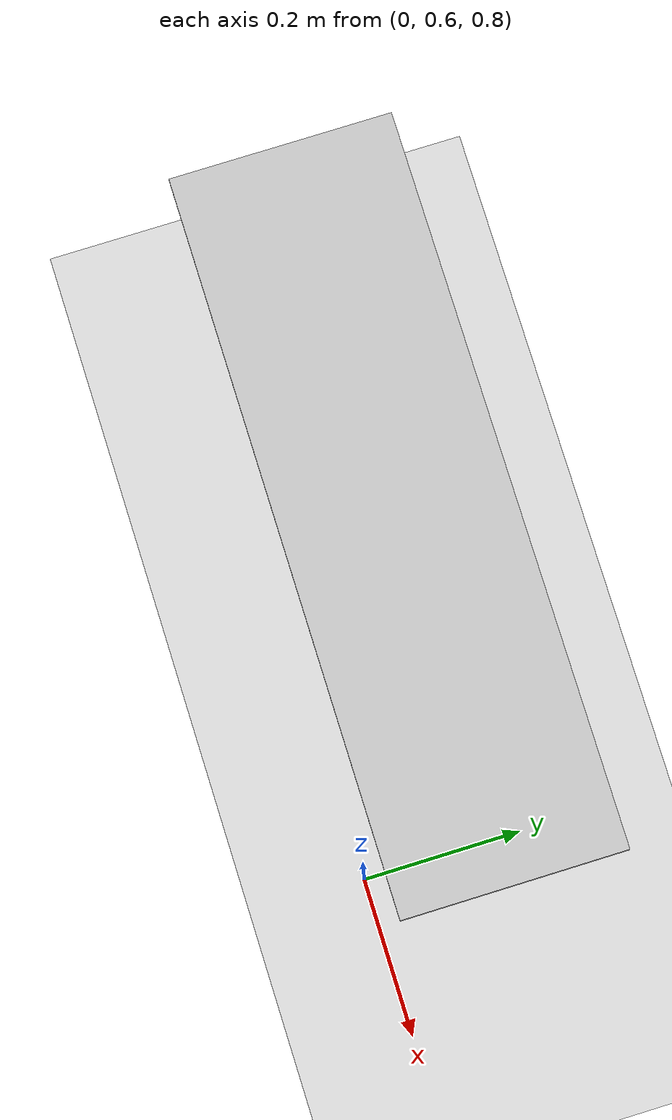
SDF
<?xml version="1.0" ?>

<sdf version="1.5">

  <world name="default">

    <gui>
      <camera name="user_default">
        <pose>-0.1984 2.4436 1.041 0 -0.064 -1.6107</pose>
      </camera>
    </gui>

    <!-- A global light source -->
    <include>
      <uri>model://sun</uri>
    </include>

    <!-- A ground plane -->
    <include>
      <uri>model://ground_plane</uri>
    </include>

    <!-- A rigid body -->
    <model name="box">
      <static>true</static>
      <pose>-0.4455 0.779 0.724389 0 0.0 0</pose>
      <link name="link">
        <collision name="collision">
          <geometry>
            <box>
              <size>1.0 0.3 0.01</size>
            </box>
          </geometry>
        </collision>
        <visual name="visual">
          <geometry>
            <box>
              <size>1.0 0.3 0.01</size>
            </box>
          </geometry>
        </visual>
      </link>
    </model>

    </world>

</sdf>
